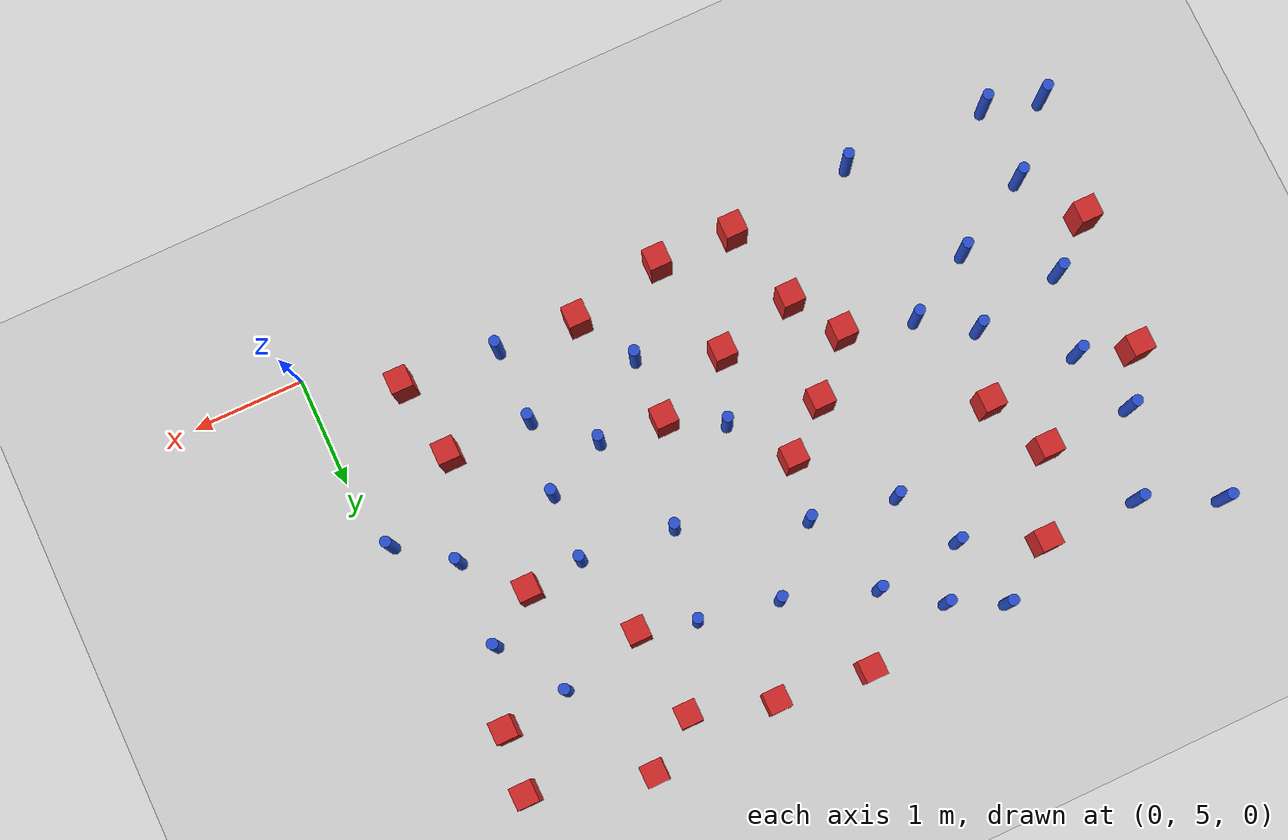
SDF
<sdf version="1.6">
 <world name="default">
  <model name="ground_plane">
   <static>1</static>
   <link name="link">
    <collision name="collision">
     <geometry><plane><normal>0 0 1</normal><size>100 100</size></plane></geometry>
     <surface><friction><ode><mu>100</mu><mu2>50</mu2></ode></friction></surface>
    </collision>
    <visual name="visual">
     <cast_shadows>0</cast_shadows>
     <geometry><plane><normal>0 0 1</normal><size>100 100</size></plane></geometry>
     <material>
      <ambient>1.0 1.0 1.0 1.0</ambient>
      <diffuse>0.8 0.8 0.8 1.0</diffuse>
      <specular>0.01 0.01 0.01 1.000000</specular>
     </material>
    </visual>
   </link>
  </model>
  <model name="square_post_obstacle3">
   <static>true</static>
   <pose>-0.918401008194 6.17674833115 1.91545236811e-07 -7.35059704564e-06 1.12565212e-07 2.39332434364e-05</pose>
   <link name="link">
    <pose>0 0 0.25 0 -0 0</pose>
    <inertial>
     <mass>100</mass>
     <inertia>
      <ixx>0.166667</ixx>
      <ixy>0</ixy>
      <ixz>0</ixz>
      <iyy>0.166667</iyy>
      <iyz>0</iyz>
      <izz>0.166667</izz>
     </inertia>
    </inertial>
    <collision name="collision"><geometry><box><size>.2 .2 .5</size></box></geometry></collision>
    <visual name="visual">
     <geometry><box><size>.2 .2 .5</size></box></geometry>
     <material>
      <script><name>Gazebo/Red</name><uri>file://media/materials/scripts/gazebo.material</uri></script>
     </material>
    </visual>
   </link>
  </model>
  <model name="square_post_obstacle4">
   <static>true</static>
   <pose>-5.23449255647 9.01291391849 1.91545236811e-07 -7.35059704564e-06 1.12565212e-07 2.39332434364e-05</pose>
   <link name="link">
    <pose>0 0 0.25 0 -0 0</pose>
    <inertial>
     <mass>100</mass>
     <inertia>
      <ixx>0.166667</ixx>
      <ixy>0</ixy>
      <ixz>0</ixz>
      <iyy>0.166667</iyy>
      <iyz>0</iyz>
      <izz>0.166667</izz>
     </inertia>
    </inertial>
    <collision name="collision"><geometry><box><size>.2 .2 .5</size></box></geometry></collision>
    <visual name="visual">
     <geometry><box><size>.2 .2 .5</size></box></geometry>
     <material>
      <script><name>Gazebo/Red</name><uri>file://media/materials/scripts/gazebo.material</uri></script>
     </material>
    </visual>
   </link>
  </model>
  <model name="pole_obstacle4">
   <static>true</static>
   <pose>-0.623896002527 7.06503482538 7.38925637345e-09 -8.471706928e-08 1.24976765086e-08 -1.74513093015e-07</pose>
   <link name="link">
    <pose>0 0 0.3 0 -0 0</pose>
    <inertial>
     <mass>1</mass>
     <inertia><ixx>0.145833</ixx><ixy>0</ixy><ixz>0</ixz><iyy>0.145833</iyy><iyz>0</iyz><izz>0.125</izz></inertia>
    </inertial>
    <collision name="collision">
     <geometry><cylinder><radius>0.05</radius><length>.6</length></cylinder></geometry>
    </collision>
    <visual name="visual">
     <geometry><cylinder><radius>0.05</radius><length>.6</length></cylinder></geometry>
     <material>
      <script><name>Gazebo/Blue</name><uri>file://media/materials/scripts/gazebo.material</uri></script>
     </material>
    </visual>
   </link>
  </model>
  <model name="square_post_obstacle16">
   <static>true</static>
   <pose>-6.69590890887 7.84037955115 1.91545236811e-07 -7.35059704564e-06 1.12565212e-07 2.39332434364e-05</pose>
   <link name="link">
    <pose>0 0 0.25 0 -0 0</pose>
    <inertial>
     <mass>100</mass>
     <inertia>
      <ixx>0.166667</ixx>
      <ixy>0</ixy>
      <ixz>0</ixz>
      <iyy>0.166667</iyy>
      <iyz>0</iyz>
      <izz>0.166667</izz>
     </inertia>
    </inertial>
    <collision name="collision"><geometry><box><size>.2 .2 .5</size></box></geometry></collision>
    <visual name="visual">
     <geometry><box><size>.2 .2 .5</size></box></geometry>
     <material>
      <script><name>Gazebo/Red</name><uri>file://media/materials/scripts/gazebo.material</uri></script>
     </material>
    </visual>
   </link>
  </model>
  <model name="pole_obstacle9">
   <static>true</static>
   <pose>-5.08694028577 6.80690436211 7.38925637345e-09 -8.47170692796e-08 1.24976764786e-08 -1.74513093032e-07</pose>
   <link name="link">
    <pose>0 0 0.3 0 -0 0</pose>
    <inertial>
     <mass>1</mass>
     <inertia><ixx>0.145833</ixx><ixy>0</ixy><ixz>0</ixz><iyy>0.145833</iyy><iyz>0</iyz><izz>0.125</izz></inertia>
    </inertial>
    <collision name="collision">
     <geometry><cylinder><radius>0.05</radius><length>.6</length></cylinder></geometry>
    </collision>
    <visual name="visual">
     <geometry><cylinder><radius>0.05</radius><length>.6</length></cylinder></geometry>
     <material>
      <script><name>Gazebo/Blue</name><uri>file://media/materials/scripts/gazebo.material</uri></script>
     </material>
    </visual>
   </link>
  </model>
  <model name="square_post_obstacle22">
   <static>true</static>
   <pose>-1.38829633164 9.39031996727 1.91545236811e-07 -7.35059704564e-06 1.12565212e-07 2.39332434364e-05</pose>
   <link name="link">
    <pose>0 0 0.25 0 -0 0</pose>
    <inertial>
     <mass>100</mass>
     <inertia>
      <ixx>0.166667</ixx>
      <ixy>0</ixy>
      <ixz>0</ixz>
      <iyy>0.166667</iyy>
      <iyz>0</iyz>
      <izz>0.166667</izz>
     </inertia>
    </inertial>
    <collision name="collision"><geometry><box><size>.2 .2 .5</size></box></geometry></collision>
    <visual name="visual">
     <geometry><box><size>.2 .2 .5</size></box></geometry>
     <material>
      <script><name>Gazebo/Red</name><uri>file://media/materials/scripts/gazebo.material</uri></script>
     </material>
    </visual>
   </link>
  </model>
  <model name="pole_obstacle15">
   <static>true</static>
   <pose>-2.41591872018 7.57751806463 7.38925637345e-09 -8.47170692798e-08 1.24976765033e-08 -1.74513093019e-07</pose>
   <link name="link">
    <pose>0 0 0.3 0 -0 0</pose>
    <inertial>
     <mass>1</mass>
     <inertia><ixx>0.145833</ixx><ixy>0</ixy><ixz>0</ixz><iyy>0.145833</iyy><iyz>0</iyz><izz>0.125</izz></inertia>
    </inertial>
    <collision name="collision">
     <geometry><cylinder><radius>0.05</radius><length>.6</length></cylinder></geometry>
    </collision>
    <visual name="visual">
     <geometry><cylinder><radius>0.05</radius><length>.6</length></cylinder></geometry>
     <material>
      <script><name>Gazebo/Blue</name><uri>file://media/materials/scripts/gazebo.material</uri></script>
     </material>
    </visual>
   </link>
  </model>
  <model name="square_post_obstacle33">
   <static>true</static>
   <pose>-4.01774112409 7.10215263318 1.91545236811e-07 -7.35059704564e-06 1.12565212e-07 2.39332434364e-05</pose>
   <link name="link">
    <pose>0 0 0.25 0 -0 0</pose>
    <inertial>
     <mass>100</mass>
     <inertia>
      <ixx>0.166667</ixx>
      <ixy>0</ixy>
      <ixz>0</ixz>
      <iyy>0.166667</iyy>
      <iyz>0</iyz>
      <izz>0.166667</izz>
     </inertia>
    </inertial>
    <collision name="collision"><geometry><box><size>.2 .2 .5</size></box></geometry></collision>
    <visual name="visual">
     <geometry><box><size>.2 .2 .5</size></box></geometry>
     <material>
      <script><name>Gazebo/Red</name><uri>file://media/materials/scripts/gazebo.material</uri></script>
     </material>
    </visual>
   </link>
  </model>
  <model name="square_post_obstacle34">
   <static>true</static>
   <pose>-3.43470226024 6.36694074764 1.91545236811e-07 -7.35059704564e-06 1.12565212e-07 2.39332434364e-05</pose>
   <link name="link">
    <pose>0 0 0.25 0 -0 0</pose>
    <inertial>
     <mass>100</mass>
     <inertia>
      <ixx>0.166667</ixx>
      <ixy>0</ixy>
      <ixz>0</ixz>
      <iyy>0.166667</iyy>
      <iyz>0</iyz>
      <izz>0.166667</izz>
     </inertia>
    </inertial>
    <collision name="collision"><geometry><box><size>.2 .2 .5</size></box></geometry></collision>
    <visual name="visual">
     <geometry><box><size>.2 .2 .5</size></box></geometry>
     <material>
      <script><name>Gazebo/Red</name><uri>file://media/materials/scripts/gazebo.material</uri></script>
     </material>
    </visual>
   </link>
  </model>
  <model name="pole_obstacle30">
   <static>true</static>
   <pose>-0.614369016193 7.85293304512 7.38925637345e-09 -8.471706928e-08 1.24976765086e-08 -1.74513093015e-07</pose>
   <link name="link">
    <pose>0 0 0.3 0 -0 0</pose>
    <inertial>
     <mass>1</mass>
     <inertia><ixx>0.145833</ixx><ixy>0</ixy><ixz>0</ixz><iyy>0.145833</iyy><iyz>0</iyz><izz>0.125</izz></inertia>
    </inertial>
    <collision name="collision">
     <geometry><cylinder><radius>0.05</radius><length>.6</length></cylinder></geometry>
    </collision>
    <visual name="visual">
     <geometry><cylinder><radius>0.05</radius><length>.6</length></cylinder></geometry>
     <material>
      <script><name>Gazebo/Blue</name><uri>file://media/materials/scripts/gazebo.material</uri></script>
     </material>
    </visual>
   </link>
  </model>
  <model name="pole_obstacle32">
   <static>true</static>
   <pose>-6.38369213323 6.96291825536 7.38925637345e-09 -8.47170692796e-08 1.24976764786e-08 -1.74513093032e-07</pose>
   <link name="link">
    <pose>0 0 0.3 0 -0 0</pose>
    <inertial>
     <mass>1</mass>
     <inertia><ixx>0.145833</ixx><ixy>0</ixy><ixz>0</ixz><iyy>0.145833</iyy><iyz>0</iyz><izz>0.125</izz></inertia>
    </inertial>
    <collision name="collision">
     <geometry><cylinder><radius>0.05</radius><length>.6</length></cylinder></geometry>
    </collision>
    <visual name="visual">
     <geometry><cylinder><radius>0.05</radius><length>.6</length></cylinder></geometry>
     <material>
      <script><name>Gazebo/Blue</name><uri>file://media/materials/scripts/gazebo.material</uri></script>
     </material>
    </visual>
   </link>
  </model>
  <model name="pole_obstacle35">
   <static>true</static>
   <pose>-1.5731115859 7.48554747959 7.38925637345e-09 -8.47170692799e-08 1.24976765033e-08 -1.74513093018e-07</pose>
   <link name="link">
    <pose>0 0 0.3 0 -0 0</pose>
    <inertial>
     <mass>1</mass>
     <inertia><ixx>0.145833</ixx><ixy>0</ixy><ixz>0</ixz><iyy>0.145833</iyy><iyz>0</iyz><izz>0.125</izz></inertia>
    </inertial>
    <collision name="collision">
     <geometry><cylinder><radius>0.05</radius><length>.6</length></cylinder></geometry>
    </collision>
    <visual name="visual">
     <geometry><cylinder><radius>0.05</radius><length>.6</length></cylinder></geometry>
     <material>
      <script><name>Gazebo/Blue</name><uri>file://media/materials/scripts/gazebo.material</uri></script>
     </material>
    </visual>
   </link>
  </model>
  <model name="square_post_obstacle37">
   <static>true</static>
   <pose>-5.60214243194 8.30053714972 1.91545236811e-07 -7.35059704564e-06 1.12565212e-07 2.39332434364e-05</pose>
   <link name="link">
    <pose>0 0 0.25 0 -0 0</pose>
    <inertial>
     <mass>100</mass>
     <inertia>
      <ixx>0.166667</ixx>
      <ixy>0</ixy>
      <ixz>0</ixz>
      <iyy>0.166667</iyy>
      <iyz>0</iyz>
      <izz>0.166667</izz>
     </inertia>
    </inertial>
    <collision name="collision"><geometry><box><size>.2 .2 .5</size></box></geometry></collision>
    <visual name="visual">
     <geometry><box><size>.2 .2 .5</size></box></geometry>
     <material>
      <script><name>Gazebo/Red</name><uri>file://media/materials/scripts/gazebo.material</uri></script>
     </material>
    </visual>
   </link>
  </model>
  <model name="pole_obstacle43">
   <static>true</static>
   <pose>-1.6851196477 5.51558066621 7.38925637345e-09 -8.47170692799e-08 1.24976765033e-08 -1.74513093018e-07</pose>
   <link name="link">
    <pose>0 0 0.3 0 -0 0</pose>
    <inertial>
     <mass>1</mass>
     <inertia><ixx>0.145833</ixx><ixy>0</ixy><ixz>0</ixz><iyy>0.145833</iyy><iyz>0</iyz><izz>0.125</izz></inertia>
    </inertial>
    <collision name="collision">
     <geometry><cylinder><radius>0.05</radius><length>.6</length></cylinder></geometry>
    </collision>
    <visual name="visual">
     <geometry><cylinder><radius>0.05</radius><length>.6</length></cylinder></geometry>
     <material>
      <script><name>Gazebo/Blue</name><uri>file://media/materials/scripts/gazebo.material</uri></script>
     </material>
    </visual>
   </link>
  </model>
  <model name="pole_obstacle45">
   <static>true</static>
   <pose>-0.153609339791 6.69365491989 7.38925637345e-09 -8.47170692799e-08 1.24976765043e-08 -1.74513093019e-07</pose>
   <link name="link">
    <pose>0 0 0.3 0 -0 0</pose>
    <inertial>
     <mass>1</mass>
     <inertia><ixx>0.145833</ixx><ixy>0</ixy><ixz>0</ixz><iyy>0.145833</iyy><iyz>0</iyz><izz>0.125</izz></inertia>
    </inertial>
    <collision name="collision">
     <geometry><cylinder><radius>0.05</radius><length>.6</length></cylinder></geometry>
    </collision>
    <visual name="visual">
     <geometry><cylinder><radius>0.05</radius><length>.6</length></cylinder></geometry>
     <material>
      <script><name>Gazebo/Blue</name><uri>file://media/materials/scripts/gazebo.material</uri></script>
     </material>
    </visual>
   </link>
  </model>
  <model name="pole_obstacle50">
   <static>true</static>
   <pose>-4.55668917506 8.71123426103 7.38925637345e-09 -8.471706928e-08 1.24976765081e-08 -1.74513093015e-07</pose>
   <link name="link">
    <pose>0 0 0.3 0 -0 0</pose>
    <inertial>
     <mass>1</mass>
     <inertia><ixx>0.145833</ixx><ixy>0</ixy><ixz>0</ixz><iyy>0.145833</iyy><iyz>0</iyz><izz>0.125</izz></inertia>
    </inertial>
    <collision name="collision">
     <geometry><cylinder><radius>0.05</radius><length>.6</length></cylinder></geometry>
    </collision>
    <visual name="visual">
     <geometry><cylinder><radius>0.05</radius><length>.6</length></cylinder></geometry>
     <material>
      <script><name>Gazebo/Blue</name><uri>file://media/materials/scripts/gazebo.material</uri></script>
     </material>
    </visual>
   </link>
  </model>
  <model name="square_post_obstacle58">
   <static>true</static>
   <pose>-2.72984956424 6.68530887392 1.91545236811e-07 -7.35059704564e-06 1.12565212e-07 2.39332434364e-05</pose>
   <link name="link">
    <pose>0 0 0.25 0 -0 0</pose>
    <inertial>
     <mass>100</mass>
     <inertia>
      <ixx>0.166667</ixx>
      <ixy>0</ixy>
      <ixz>0</ixz>
      <iyy>0.166667</iyy>
      <iyz>0</iyz>
      <izz>0.166667</izz>
     </inertia>
    </inertial>
    <collision name="collision"><geometry><box><size>.2 .2 .5</size></box></geometry></collision>
    <visual name="visual">
     <geometry><box><size>.2 .2 .5</size></box></geometry>
     <material>
      <script><name>Gazebo/Red</name><uri>file://media/materials/scripts/gazebo.material</uri></script>
     </material>
    </visual>
   </link>
  </model>
  <model name="square_post_obstacle59">
   <static>true</static>
   <pose>-4.45010056544 6.64157795449 1.91545236811e-07 -7.35059704564e-06 1.12565212e-07 2.39332434364e-05</pose>
   <link name="link">
    <pose>0 0 0.25 0 -0 0</pose>
    <inertial>
     <mass>100</mass>
     <inertia>
      <ixx>0.166667</ixx>
      <ixy>0</ixy>
      <ixz>0</ixz>
      <iyy>0.166667</iyy>
      <iyz>0</iyz>
      <izz>0.166667</izz>
     </inertia>
    </inertial>
    <collision name="collision"><geometry><box><size>.2 .2 .5</size></box></geometry></collision>
    <visual name="visual">
     <geometry><box><size>.2 .2 .5</size></box></geometry>
     <material>
      <script><name>Gazebo/Red</name><uri>file://media/materials/scripts/gazebo.material</uri></script>
     </material>
    </visual>
   </link>
  </model>
  <model name="pole_obstacle56">
   <static>true</static>
   <pose>-2.97497607164 8.5173098317 7.38925637345e-09 -8.47170692793e-08 1.24976764408e-08 -1.74513093041e-07</pose>
   <link name="link">
    <pose>0 0 0.3 0 -0 0</pose>
    <inertial>
     <mass>1</mass>
     <inertia><ixx>0.145833</ixx><ixy>0</ixy><ixz>0</ixz><iyy>0.145833</iyy><iyz>0</iyz><izz>0.125</izz></inertia>
    </inertial>
    <collision name="collision">
     <geometry><cylinder><radius>0.05</radius><length>.6</length></cylinder></geometry>
    </collision>
    <visual name="visual">
     <geometry><cylinder><radius>0.05</radius><length>.6</length></cylinder></geometry>
     <material>
      <script><name>Gazebo/Blue</name><uri>file://media/materials/scripts/gazebo.material</uri></script>
     </material>
    </visual>
   </link>
  </model>
  <model name="square_post_obstacle63">
   <static>true</static>
   <pose>-3.59511547546 7.46047542918 1.91545236811e-07 -7.35059704564e-06 1.12565212e-07 2.39332434364e-05</pose>
   <link name="link">
    <pose>0 0 0.25 0 -0 0</pose>
    <inertial>
     <mass>100</mass>
     <inertia>
      <ixx>0.166667</ixx>
      <ixy>0</ixy>
      <ixz>0</ixz>
      <iyy>0.166667</iyy>
      <iyz>0</iyz>
      <izz>0.166667</izz>
     </inertia>
    </inertial>
    <collision name="collision"><geometry><box><size>.2 .2 .5</size></box></geometry></collision>
    <visual name="visual">
     <geometry><box><size>.2 .2 .5</size></box></geometry>
     <material>
      <script><name>Gazebo/Red</name><uri>file://media/materials/scripts/gazebo.material</uri></script>
     </material>
    </visual>
   </link>
  </model>
  <model name="pole_obstacle61">
   <static>true</static>
   <pose>-5.13692649196 5.30350880595 7.38925637345e-09 -8.47170692796e-08 1.24976764786e-08 -1.74513093032e-07</pose>
   <link name="link">
    <pose>0 0 0.3 0 -0 0</pose>
    <inertial>
     <mass>1</mass>
     <inertia><ixx>0.145833</ixx><ixy>0</ixy><ixz>0</ixz><iyy>0.145833</iyy><iyz>0</iyz><izz>0.125</izz></inertia>
    </inertial>
    <collision name="collision">
     <geometry><cylinder><radius>0.05</radius><length>.6</length></cylinder></geometry>
    </collision>
    <visual name="visual">
     <geometry><cylinder><radius>0.05</radius><length>.6</length></cylinder></geometry>
     <material>
      <script><name>Gazebo/Blue</name><uri>file://media/materials/scripts/gazebo.material</uri></script>
     </material>
    </visual>
   </link>
  </model>
  <model name="pole_obstacle63">
   <static>true</static>
   <pose>-1.00224741705 8.44669307577 7.38925637345e-09 -8.47170692798e-08 1.2497676492e-08 -1.74513093025e-07</pose>
   <link name="link">
    <pose>0 0 0.3 0 -0 0</pose>
    <inertial>
     <mass>1</mass>
     <inertia><ixx>0.145833</ixx><ixy>0</ixy><ixz>0</ixz><iyy>0.145833</iyy><iyz>0</iyz><izz>0.125</izz></inertia>
    </inertial>
    <collision name="collision">
     <geometry><cylinder><radius>0.05</radius><length>.6</length></cylinder></geometry>
    </collision>
    <visual name="visual">
     <geometry><cylinder><radius>0.05</radius><length>.6</length></cylinder></geometry>
     <material>
      <script><name>Gazebo/Blue</name><uri>file://media/materials/scripts/gazebo.material</uri></script>
     </material>
    </visual>
   </link>
  </model>
  <model name="square_post_obstacle66">
   <static>true</static>
   <pose>-5.32951524692 7.73832660719 1.91545236811e-07 -7.35059704564e-06 1.12565212e-07 2.39332434364e-05</pose>
   <link name="link">
    <pose>0 0 0.25 0 -0 0</pose>
    <inertial>
     <mass>100</mass>
     <inertia>
      <ixx>0.166667</ixx>
      <ixy>0</ixy>
      <ixz>0</ixz>
      <iyy>0.166667</iyy>
      <iyz>0</iyz>
      <izz>0.166667</izz>
     </inertia>
    </inertial>
    <collision name="collision"><geometry><box><size>.2 .2 .5</size></box></geometry></collision>
    <visual name="visual">
     <geometry><box><size>.2 .2 .5</size></box></geometry>
     <material>
      <script><name>Gazebo/Red</name><uri>file://media/materials/scripts/gazebo.material</uri></script>
     </material>
    </visual>
   </link>
  </model>
  <model name="square_post_obstacle67">
   <static>true</static>
   <pose>-2.414627449 5.56766387382 1.91545236811e-07 -7.35059704564e-06 1.12565212e-07 2.39332434364e-05</pose>
   <link name="link">
    <pose>0 0 0.25 0 -0 0</pose>
    <inertial>
     <mass>100</mass>
     <inertia>
      <ixx>0.166667</ixx>
      <ixy>0</ixy>
      <ixz>0</ixz>
      <iyy>0.166667</iyy>
      <iyz>0</iyz>
      <izz>0.166667</izz>
     </inertia>
    </inertial>
    <collision name="collision"><geometry><box><size>.2 .2 .5</size></box></geometry></collision>
    <visual name="visual">
     <geometry><box><size>.2 .2 .5</size></box></geometry>
     <material>
      <script><name>Gazebo/Red</name><uri>file://media/materials/scripts/gazebo.material</uri></script>
     </material>
    </visual>
   </link>
  </model>
  <model name="pole_obstacle65">
   <static>true</static>
   <pose>-6.45932071452 5.3413321318 7.38925637345e-09 -8.47170692796e-08 1.24976764786e-08 -1.74513093032e-07</pose>
   <link name="link">
    <pose>0 0 0.3 0 -0 0</pose>
    <inertial>
     <mass>1</mass>
     <inertia><ixx>0.145833</ixx><ixy>0</ixy><ixz>0</ixz><iyy>0.145833</iyy><iyz>0</iyz><izz>0.125</izz></inertia>
    </inertial>
    <collision name="collision">
     <geometry><cylinder><radius>0.05</radius><length>.6</length></cylinder></geometry>
    </collision>
    <visual name="visual">
     <geometry><cylinder><radius>0.05</radius><length>.6</length></cylinder></geometry>
     <material>
      <script><name>Gazebo/Blue</name><uri>file://media/materials/scripts/gazebo.material</uri></script>
     </material>
    </visual>
   </link>
  </model>
  <model name="square_post_obstacle76">
   <static>true</static>
   <pose>-2.57226018982 9.27613784742 1.91545236811e-07 -7.35059704564e-06 1.12565212e-07 2.39332434364e-05</pose>
   <link name="link">
    <pose>0 0 0.25 0 -0 0</pose>
    <inertial>
     <mass>100</mass>
     <inertia>
      <ixx>0.166667</ixx>
      <ixy>0</ixy>
      <ixz>0</ixz>
      <iyy>0.166667</iyy>
      <iyz>0</iyz>
      <izz>0.166667</izz>
     </inertia>
    </inertial>
    <collision name="collision"><geometry><box><size>.2 .2 .5</size></box></geometry></collision>
    <visual name="visual">
     <geometry><box><size>.2 .2 .5</size></box></geometry>
     <material>
      <script><name>Gazebo/Red</name><uri>file://media/materials/scripts/gazebo.material</uri></script>
     </material>
    </visual>
   </link>
  </model>
  <model name="pole_obstacle77">
   <static>true</static>
   <pose>-6.44648812785 6.05945657615 7.38925637345e-09 -8.47170692796e-08 1.24976764786e-08 -1.74513093032e-07</pose>
   <link name="link">
    <pose>0 0 0.3 0 -0 0</pose>
    <inertial>
     <mass>1</mass>
     <inertia><ixx>0.145833</ixx><ixy>0</ixy><ixz>0</ixz><iyy>0.145833</iyy><iyz>0</iyz><izz>0.125</izz></inertia>
    </inertial>
    <collision name="collision">
     <geometry><cylinder><radius>0.05</radius><length>.6</length></cylinder></geometry>
    </collision>
    <visual name="visual">
     <geometry><cylinder><radius>0.05</radius><length>.6</length></cylinder></geometry>
     <material>
      <script><name>Gazebo/Blue</name><uri>file://media/materials/scripts/gazebo.material</uri></script>
     </material>
    </visual>
   </link>
  </model>
  <model name="pole_obstacle81">
   <static>true</static>
   <pose>-1.59021064232 6.87446836828 7.38925637345e-09 -8.47170692799e-08 1.24976765033e-08 -1.74513093018e-07</pose>
   <link name="link">
    <pose>0 0 0.3 0 -0 0</pose>
    <inertial>
     <mass>1</mass>
     <inertia><ixx>0.145833</ixx><ixy>0</ixy><ixz>0</ixz><iyy>0.145833</iyy><iyz>0</iyz><izz>0.125</izz></inertia>
    </inertial>
    <collision name="collision">
     <geometry><cylinder><radius>0.05</radius><length>.6</length></cylinder></geometry>
    </collision>
    <visual name="visual">
     <geometry><cylinder><radius>0.05</radius><length>.6</length></cylinder></geometry>
     <material>
      <script><name>Gazebo/Blue</name><uri>file://media/materials/scripts/gazebo.material</uri></script>
     </material>
    </visual>
   </link>
  </model>
  <model name="pole_obstacle88">
   <static>true</static>
   <pose>-3.20835216498 6.94812294231 7.38925637345e-09 -8.47170692794e-08 1.24976764468e-08 -1.7451309304e-07</pose>
   <link name="link">
    <pose>0 0 0.3 0 -0 0</pose>
    <inertial>
     <mass>1</mass>
     <inertia><ixx>0.145833</ixx><ixy>0</ixy><ixz>0</ixz><iyy>0.145833</iyy><iyz>0</iyz><izz>0.125</izz></inertia>
    </inertial>
    <collision name="collision">
     <geometry><cylinder><radius>0.05</radius><length>.6</length></cylinder></geometry>
    </collision>
    <visual name="visual">
     <geometry><cylinder><radius>0.05</radius><length>.6</length></cylinder></geometry>
     <material>
      <script><name>Gazebo/Blue</name><uri>file://media/materials/scripts/gazebo.material</uri></script>
     </material>
    </visual>
   </link>
  </model>
  <model name="square_post_obstacle82">
   <static>true</static>
   <pose>-3.25753363041 5.40329968359 1.91545236811e-07 -7.35059704564e-06 1.12565212e-07 2.39332434364e-05</pose>
   <link name="link">
    <pose>0 0 0.25 0 -0 0</pose>
    <inertial>
     <mass>100</mass>
     <inertia>
      <ixx>0.166667</ixx>
      <ixy>0</ixy>
      <ixz>0</ixz>
      <iyy>0.166667</iyy>
      <iyz>0</iyz>
      <izz>0.166667</izz>
     </inertia>
    </inertial>
    <collision name="collision"><geometry><box><size>.2 .2 .5</size></box></geometry></collision>
    <visual name="visual">
     <geometry><box><size>.2 .2 .5</size></box></geometry>
     <material>
      <script><name>Gazebo/Red</name><uri>file://media/materials/scripts/gazebo.material</uri></script>
     </material>
    </visual>
   </link>
  </model>
  <model name="pole_obstacle94">
   <static>true</static>
   <pose>-3.49290067821 8.00663425013 7.38925637345e-09 -8.47170692801e-08 1.24976765178e-08 -1.74513093011e-07</pose>
   <link name="link">
    <pose>0 0 0.3 0 -0 0</pose>
    <inertial>
     <mass>1</mass>
     <inertia><ixx>0.145833</ixx><ixy>0</ixy><ixz>0</ixz><iyy>0.145833</iyy><iyz>0</iyz><izz>0.125</izz></inertia>
    </inertial>
    <collision name="collision">
     <geometry><cylinder><radius>0.05</radius><length>.6</length></cylinder></geometry>
    </collision>
    <visual name="visual">
     <geometry><cylinder><radius>0.05</radius><length>.6</length></cylinder></geometry>
     <material>
      <script><name>Gazebo/Blue</name><uri>file://media/materials/scripts/gazebo.material</uri></script>
     </material>
    </visual>
   </link>
  </model>
  <model name="square_post_obstacle85">
   <static>true</static>
   <pose>-0.33237803733 9.09518789099 1.91545236811e-07 -7.35059704564e-06 1.12565212e-07 2.39332434364e-05</pose>
   <link name="link">
    <pose>0 0 0.25 0 -0 0</pose>
    <inertial>
     <mass>100</mass>
     <inertia>
      <ixx>0.166667</ixx>
      <ixy>0</ixy>
      <ixz>0</ixz>
      <iyy>0.166667</iyy>
      <iyz>0</iyz>
      <izz>0.166667</izz>
     </inertia>
    </inertial>
    <collision name="collision"><geometry><box><size>.2 .2 .5</size></box></geometry></collision>
    <visual name="visual">
     <geometry><box><size>.2 .2 .5</size></box></geometry>
     <material>
      <script><name>Gazebo/Red</name><uri>file://media/materials/scripts/gazebo.material</uri></script>
     </material>
    </visual>
   </link>
  </model>
  <model name="square_post_obstacle88">
   <static>true</static>
   <pose>-3.41153118251 9.37278961481 1.91545236811e-07 -7.35059704564e-06 1.12565212e-07 2.39332434364e-05</pose>
   <link name="link">
    <pose>0 0 0.25 0 -0 0</pose>
    <inertial>
     <mass>100</mass>
     <inertia>
      <ixx>0.166667</ixx>
      <ixy>0</ixy>
      <ixz>0</ixz>
      <iyy>0.166667</iyy>
      <iyz>0</iyz>
      <izz>0.166667</izz>
     </inertia>
    </inertial>
    <collision name="collision"><geometry><box><size>.2 .2 .5</size></box></geometry></collision>
    <visual name="visual">
     <geometry><box><size>.2 .2 .5</size></box></geometry>
     <material>
      <script><name>Gazebo/Red</name><uri>file://media/materials/scripts/gazebo.material</uri></script>
     </material>
    </visual>
   </link>
  </model>
  <model name="square_post_obstacle95">
   <static>true</static>
   <pose>-1.84785937966 9.06594925467 1.91545236811e-07 -7.35059704564e-06 1.12565212e-07 2.39332434364e-05</pose>
   <link name="link">
    <pose>0 0 0.25 0 -0 0</pose>
    <inertial>
     <mass>100</mass>
     <inertia>
      <ixx>0.166667</ixx>
      <ixy>0</ixy>
      <ixz>0</ixz>
      <iyy>0.166667</iyy>
      <iyz>0</iyz>
      <izz>0.166667</izz>
     </inertia>
    </inertial>
    <collision name="collision"><geometry><box><size>.2 .2 .5</size></box></geometry></collision>
    <visual name="visual">
     <geometry><box><size>.2 .2 .5</size></box></geometry>
     <material>
      <script><name>Gazebo/Red</name><uri>file://media/materials/scripts/gazebo.material</uri></script>
     </material>
    </visual>
   </link>
  </model>
  <model name="pole_obstacle116">
   <static>true</static>
   <pose>-2.25829506796 8.3826711862 7.38925637345e-09 -8.47170692793e-08 1.24976764408e-08 -1.74513093041e-07</pose>
   <link name="link">
    <pose>0 0 0.3 0 -0 0</pose>
    <inertial>
     <mass>1</mass>
     <inertia><ixx>0.145833</ixx><ixy>0</ixy><ixz>0</ixz><iyy>0.145833</iyy><iyz>0</iyz><izz>0.125</izz></inertia>
    </inertial>
    <collision name="collision">
     <geometry><cylinder><radius>0.05</radius><length>.6</length></cylinder></geometry>
    </collision>
    <visual name="visual">
     <geometry><cylinder><radius>0.05</radius><length>.6</length></cylinder></geometry>
     <material>
      <script><name>Gazebo/Blue</name><uri>file://media/materials/scripts/gazebo.material</uri></script>
     </material>
    </visual>
   </link>
  </model>
  <model name="pole_obstacle119">
   <static>true</static>
   <pose>-6.41518786215 8.29047856282 7.38925637345e-09 -8.471706928e-08 1.24976765081e-08 -1.74513093015e-07</pose>
   <link name="link">
    <pose>0 0 0.3 0 -0 0</pose>
    <inertial>
     <mass>1</mass>
     <inertia><ixx>0.145833</ixx><ixy>0</ixy><ixz>0</ixz><iyy>0.145833</iyy><iyz>0</iyz><izz>0.125</izz></inertia>
    </inertial>
    <collision name="collision">
     <geometry><cylinder><radius>0.05</radius><length>.6</length></cylinder></geometry>
    </collision>
    <visual name="visual">
     <geometry><cylinder><radius>0.05</radius><length>.6</length></cylinder></geometry>
     <material>
      <script><name>Gazebo/Blue</name><uri>file://media/materials/scripts/gazebo.material</uri></script>
     </material>
    </visual>
   </link>
  </model>
  <model name="square_post_obstacle123">
   <static>true</static>
   <pose>-0.803249415375 5.44893314819 1.91545236811e-07 -7.35059704564e-06 1.12565212e-07 2.39332434364e-05</pose>
   <link name="link">
    <pose>0 0 0.25 0 -0 0</pose>
    <inertial>
     <mass>100</mass>
     <inertia>
      <ixx>0.166667</ixx>
      <ixy>0</ixy>
      <ixz>0</ixz>
      <iyy>0.166667</iyy>
      <iyz>0</iyz>
      <izz>0.166667</izz>
     </inertia>
    </inertial>
    <collision name="collision"><geometry><box><size>.2 .2 .5</size></box></geometry></collision>
    <visual name="visual">
     <geometry><box><size>.2 .2 .5</size></box></geometry>
     <material>
      <script><name>Gazebo/Red</name><uri>file://media/materials/scripts/gazebo.material</uri></script>
     </material>
    </visual>
   </link>
  </model>
  <model name="pole_obstacle141">
   <static>true</static>
   <pose>-3.77446241334 8.79563692886 7.38925637345e-09 -8.47170692799e-08 1.24976765012e-08 -1.74513093021e-07</pose>
   <link name="link">
    <pose>0 0 0.3 0 -0 0</pose>
    <inertial>
     <mass>1</mass>
     <inertia><ixx>0.145833</ixx><ixy>0</ixy><ixz>0</ixz><iyy>0.145833</iyy><iyz>0</iyz><izz>0.125</izz></inertia>
    </inertial>
    <collision name="collision">
     <geometry><cylinder><radius>0.05</radius><length>.6</length></cylinder></geometry>
    </collision>
    <visual name="visual">
     <geometry><cylinder><radius>0.05</radius><length>.6</length></cylinder></geometry>
     <material>
      <script><name>Gazebo/Blue</name><uri>file://media/materials/scripts/gazebo.material</uri></script>
     </material>
    </visual>
   </link>
  </model>
  <model name="pole_obstacle142">
   <static>true</static>
   <pose>-5.71900097005 6.4502102348 7.38925637345e-09 -8.47170692796e-08 1.24976764786e-08 -1.74513093032e-07</pose>
   <link name="link">
    <pose>0 0 0.3 0 -0 0</pose>
    <inertial>
     <mass>1</mass>
     <inertia><ixx>0.145833</ixx><ixy>0</ixy><ixz>0</ixz><iyy>0.145833</iyy><iyz>0</iyz><izz>0.125</izz></inertia>
    </inertial>
    <collision name="collision">
     <geometry><cylinder><radius>0.05</radius><length>.6</length></cylinder></geometry>
    </collision>
    <visual name="visual">
     <geometry><cylinder><radius>0.05</radius><length>.6</length></cylinder></geometry>
     <material>
      <script><name>Gazebo/Blue</name><uri>file://media/materials/scripts/gazebo.material</uri></script>
     </material>
    </visual>
   </link>
  </model>
  <model name="square_post_obstacle133">
   <static>true</static>
   <pose>-3.9715017343 5.42554898071 1.91545236811e-07 -7.35059704564e-06 1.12565212e-07 2.39332434364e-05</pose>
   <link name="link">
    <pose>0 0 0.25 0 -0 0</pose>
    <inertial>
     <mass>100</mass>
     <inertia>
      <ixx>0.166667</ixx>
      <ixy>0</ixy>
      <ixz>0</ixz>
      <iyy>0.166667</iyy>
      <iyz>0</iyz>
      <izz>0.166667</izz>
     </inertia>
    </inertial>
    <collision name="collision"><geometry><box><size>.2 .2 .5</size></box></geometry></collision>
    <visual name="visual">
     <geometry><box><size>.2 .2 .5</size></box></geometry>
     <material>
      <script><name>Gazebo/Red</name><uri>file://media/materials/scripts/gazebo.material</uri></script>
     </material>
    </visual>
   </link>
  </model>
  <model name="pole_obstacle144">
   <static>true</static>
   <pose>-4.25861903065 8.14226920106 7.38925637345e-09 -8.471706928e-08 1.24976765081e-08 -1.74513093015e-07</pose>
   <link name="link">
    <pose>0 0 0.3 0 -0 0</pose>
    <inertial>
     <mass>1</mass>
     <inertia><ixx>0.145833</ixx><ixy>0</ixy><ixz>0</ixz><iyy>0.145833</iyy><iyz>0</iyz><izz>0.125</izz></inertia>
    </inertial>
    <collision name="collision">
     <geometry><cylinder><radius>0.05</radius><length>.6</length></cylinder></geometry>
    </collision>
    <visual name="visual">
     <geometry><cylinder><radius>0.05</radius><length>.6</length></cylinder></geometry>
     <material>
      <script><name>Gazebo/Blue</name><uri>file://media/materials/scripts/gazebo.material</uri></script>
     </material>
    </visual>
   </link>
  </model>
  <model name="square_post_obstacle157">
   <static>true</static>
   <pose>-1.75009122166 8.24784237939 1.91545236811e-07 -7.35059704564e-06 1.12565212e-07 2.39332434364e-05</pose>
   <link name="link">
    <pose>0 0 0.25 0 -0 0</pose>
    <inertial>
     <mass>100</mass>
     <inertia>
      <ixx>0.166667</ixx>
      <ixy>0</ixy>
      <ixz>0</ixz>
      <iyy>0.166667</iyy>
      <iyz>0</iyz>
      <izz>0.166667</izz>
     </inertia>
    </inertial>
    <collision name="collision"><geometry><box><size>.2 .2 .5</size></box></geometry></collision>
    <visual name="visual">
     <geometry><box><size>.2 .2 .5</size></box></geometry>
     <material>
      <script><name>Gazebo/Red</name><uri>file://media/materials/scripts/gazebo.material</uri></script>
     </material>
    </visual>
   </link>
  </model>
  <model name="pole_obstacle172">
   <static>true</static>
   <pose>-4.24131365952 9.14431520885 7.38925637345e-09 -8.471706928e-08 1.24976765081e-08 -1.74513093015e-07</pose>
   <link name="link">
    <pose>0 0 0.3 0 -0 0</pose>
    <inertial>
     <mass>1</mass>
     <inertia><ixx>0.145833</ixx><ixy>0</ixy><ixz>0</ixz><iyy>0.145833</iyy><iyz>0</iyz><izz>0.125</izz></inertia>
    </inertial>
    <collision name="collision">
     <geometry><cylinder><radius>0.05</radius><length>.6</length></cylinder></geometry>
    </collision>
    <visual name="visual">
     <geometry><cylinder><radius>0.05</radius><length>.6</length></cylinder></geometry>
     <material>
      <script><name>Gazebo/Blue</name><uri>file://media/materials/scripts/gazebo.material</uri></script>
     </material>
    </visual>
   </link>
  </model>
  <model name="pole_obstacle181">
   <static>true</static>
   <pose>-2.14394885097 6.62368856822 7.38925637345e-09 -8.47170692798e-08 1.24976765033e-08 -1.74513093019e-07</pose>
   <link name="link">
    <pose>0 0 0.3 0 -0 0</pose>
    <inertial>
     <mass>1</mass>
     <inertia><ixx>0.145833</ixx><ixy>0</ixy><ixz>0</ixz><iyy>0.145833</iyy><iyz>0</iyz><izz>0.125</izz></inertia>
    </inertial>
    <collision name="collision">
     <geometry><cylinder><radius>0.05</radius><length>.6</length></cylinder></geometry>
    </collision>
    <visual name="visual">
     <geometry><cylinder><radius>0.05</radius><length>.6</length></cylinder></geometry>
     <material>
      <script><name>Gazebo/Blue</name><uri>file://media/materials/scripts/gazebo.material</uri></script>
     </material>
    </visual>
   </link>
  </model>
  <model name="pole_obstacle182">
   <static>true</static>
   <pose>-5.53946303986 7.12011560005 7.38925637345e-09 -8.47170692796e-08 1.24976764786e-08 -1.74513093032e-07</pose>
   <link name="link">
    <pose>0 0 0.3 0 -0 0</pose>
    <inertial>
     <mass>1</mass>
     <inertia><ixx>0.145833</ixx><ixy>0</ixy><ixz>0</ixz><iyy>0.145833</iyy><iyz>0</iyz><izz>0.125</izz></inertia>
    </inertial>
    <collision name="collision">
     <geometry><cylinder><radius>0.05</radius><length>.6</length></cylinder></geometry>
    </collision>
    <visual name="visual">
     <geometry><cylinder><radius>0.05</radius><length>.6</length></cylinder></geometry>
     <material>
      <script><name>Gazebo/Blue</name><uri>file://media/materials/scripts/gazebo.material</uri></script>
     </material>
    </visual>
   </link>
  </model>
  <model name="square_post_obstacle180">
   <static>true</static>
   <pose>-1.05980271726 7.53223642638 1.91545236811e-07 -7.35059704564e-06 1.12565212e-07 2.39332434364e-05</pose>
   <link name="link">
    <pose>0 0 0.25 0 -0 0</pose>
    <inertial>
     <mass>100</mass>
     <inertia>
      <ixx>0.166667</ixx>
      <ixy>0</ixy>
      <ixz>0</ixz>
      <iyy>0.166667</iyy>
      <iyz>0</iyz>
      <izz>0.166667</izz>
     </inertia>
    </inertial>
    <collision name="collision"><geometry><box><size>.2 .2 .5</size></box></geometry></collision>
    <visual name="visual">
     <geometry><box><size>.2 .2 .5</size></box></geometry>
     <material>
      <script><name>Gazebo/Red</name><uri>file://media/materials/scripts/gazebo.material</uri></script>
     </material>
    </visual>
   </link>
  </model>
  <model name="square_post_obstacle185">
   <static>true</static>
   <pose>-6.81501138241 6.59948239888 1.91545236811e-07 -7.35059704564e-06 1.12565212e-07 2.39332434364e-05</pose>
   <link name="link">
    <pose>0 0 0.25 0 -0 0</pose>
    <inertial>
     <mass>100</mass>
     <inertia>
      <ixx>0.166667</ixx>
      <ixy>0</ixy>
      <ixz>0</ixz>
      <iyy>0.166667</iyy>
      <iyz>0</iyz>
      <izz>0.166667</izz>
     </inertia>
    </inertial>
    <collision name="collision"><geometry><box><size>.2 .2 .5</size></box></geometry></collision>
    <visual name="visual">
     <geometry><box><size>.2 .2 .5</size></box></geometry>
     <material>
      <script><name>Gazebo/Red</name><uri>file://media/materials/scripts/gazebo.material</uri></script>
     </material>
    </visual>
   </link>
  </model>
  <model name="square_post_obstacle191">
   <static>true</static>
   <pose>-4.16344429139 6.18648868697 1.91545236811e-07 -7.35059704564e-06 1.12565212e-07 2.39332434364e-05</pose>
   <link name="link">
    <pose>0 0 0.25 0 -0 0</pose>
    <inertial>
     <mass>100</mass>
     <inertia>
      <ixx>0.166667</ixx>
      <ixy>0</ixy>
      <ixz>0</ixz>
      <iyy>0.166667</iyy>
      <iyz>0</iyz>
      <izz>0.166667</izz>
     </inertia>
    </inertial>
    <collision name="collision"><geometry><box><size>.2 .2 .5</size></box></geometry></collision>
    <visual name="visual">
     <geometry><box><size>.2 .2 .5</size></box></geometry>
     <material>
      <script><name>Gazebo/Red</name><uri>file://media/materials/scripts/gazebo.material</uri></script>
     </material>
    </visual>
   </link>
  </model>
  <model name="square_post_obstacle202">
   <static>true</static>
   <pose>-0.395574046141 8.53035172095 1.91545236811e-07 -7.35059704564e-06 1.12565212e-07 2.39332434364e-05</pose>
   <link name="link">
    <pose>0 0 0.25 0 -0 0</pose>
    <inertial>
     <mass>100</mass>
     <inertia>
      <ixx>0.166667</ixx>
      <ixy>0</ixy>
      <ixz>0</ixz>
      <iyy>0.166667</iyy>
      <iyz>0</iyz>
      <izz>0.166667</izz>
     </inertia>
    </inertial>
    <collision name="collision"><geometry><box><size>.2 .2 .5</size></box></geometry></collision>
    <visual name="visual">
     <geometry><box><size>.2 .2 .5</size></box></geometry>
     <material>
      <script><name>Gazebo/Red</name><uri>file://media/materials/scripts/gazebo.material</uri></script>
     </material>
    </visual>
   </link>
  </model>
  <model name="pole_obstacle189">
   <static>true</static>
   <pose>-6.10867751975 9.03635536852 7.38925637345e-09 -8.471706928e-08 1.24976765081e-08 -1.74513093015e-07</pose>
   <link name="link">
    <pose>0 0 0.3 0 -0 0</pose>
    <inertial>
     <mass>1</mass>
     <inertia><ixx>0.145833</ixx><ixy>0</ixy><ixz>0</ixz><iyy>0.145833</iyy><iyz>0</iyz><izz>0.125</izz></inertia>
    </inertial>
    <collision name="collision">
     <geometry><cylinder><radius>0.05</radius><length>.6</length></cylinder></geometry>
    </collision>
    <visual name="visual">
     <geometry><cylinder><radius>0.05</radius><length>.6</length></cylinder></geometry>
     <material>
      <script><name>Gazebo/Blue</name><uri>file://media/materials/scripts/gazebo.material</uri></script>
     </material>
    </visual>
   </link>
  </model>
  <model name="pole_obstacle199">
   <static>true</static>
   <pose>-6.2107982829 7.67815266398 7.38925637345e-09 -8.47170692796e-08 1.24976764786e-08 -1.74513093032e-07</pose>
   <link name="link">
    <pose>0 0 0.3 0 -0 0</pose>
    <inertial>
     <mass>1</mass>
     <inertia><ixx>0.145833</ixx><ixy>0</ixy><ixz>0</ixz><iyy>0.145833</iyy><iyz>0</iyz><izz>0.125</izz></inertia>
    </inertial>
    <collision name="collision">
     <geometry><cylinder><radius>0.05</radius><length>.6</length></cylinder></geometry>
    </collision>
    <visual name="visual">
     <geometry><cylinder><radius>0.05</radius><length>.6</length></cylinder></geometry>
     <material>
      <script><name>Gazebo/Blue</name><uri>file://media/materials/scripts/gazebo.material</uri></script>
     </material>
    </visual>
   </link>
  </model>
  <model name="pole_obstacle200">
   <static>true</static>
   <pose>-2.72824241908 6.09239784695 7.38925637345e-09 -8.47170692798e-08 1.24976765033e-08 -1.74513093019e-07</pose>
   <link name="link">
    <pose>0 0 0.3 0 -0 0</pose>
    <inertial>
     <mass>1</mass>
     <inertia><ixx>0.145833</ixx><ixy>0</ixy><ixz>0</ixz><iyy>0.145833</iyy><iyz>0</iyz><izz>0.125</izz></inertia>
    </inertial>
    <collision name="collision">
     <geometry><cylinder><radius>0.05</radius><length>.6</length></cylinder></geometry>
    </collision>
    <visual name="visual">
     <geometry><cylinder><radius>0.05</radius><length>.6</length></cylinder></geometry>
     <material>
      <script><name>Gazebo/Blue</name><uri>file://media/materials/scripts/gazebo.material</uri></script>
     </material>
    </visual>
   </link>
  </model>
  <model name="pole_obstacle217">
   <static>true</static>
   <pose>-6.96514999043 5.48318002078 7.38925637345e-09 -8.47170692796e-08 1.24976764786e-08 -1.74513093032e-07</pose>
   <link name="link">
    <pose>0 0 0.3 0 -0 0</pose>
    <inertial>
     <mass>1</mass>
     <inertia><ixx>0.145833</ixx><ixy>0</ixy><ixz>0</ixz><iyy>0.145833</iyy><iyz>0</iyz><izz>0.125</izz></inertia>
    </inertial>
    <collision name="collision">
     <geometry><cylinder><radius>0.05</radius><length>.6</length></cylinder></geometry>
    </collision>
    <visual name="visual">
     <geometry><cylinder><radius>0.05</radius><length>.6</length></cylinder></geometry>
     <material>
      <script><name>Gazebo/Blue</name><uri>file://media/materials/scripts/gazebo.material</uri></script>
     </material>
    </visual>
   </link>
  </model>
  <model name="pole_obstacle219">
   <static>true</static>
   <pose>-4.71269999043 9.36434002078 7.38925637345e-09 -8.471706928e-08 1.24976765081e-08 -1.74513093015e-07</pose>
   <link name="link">
    <pose>0 0 0.3 0 -0 0</pose>
    <inertial>
     <mass>1</mass>
     <inertia><ixx>0.145833</ixx><ixy>0</ixy><ixz>0</ixz><iyy>0.145833</iyy><iyz>0</iyz><izz>0.125</izz></inertia>
    </inertial>
    <collision name="collision">
     <geometry><cylinder><radius>0.05</radius><length>.6</length></cylinder></geometry>
    </collision>
    <visual name="visual">
     <geometry><cylinder><radius>0.05</radius><length>.6</length></cylinder></geometry>
     <material>
      <script><name>Gazebo/Blue</name><uri>file://media/materials/scripts/gazebo.material</uri></script>
     </material>
    </visual>
   </link>
  </model>
  <model name="pole_obstacle220">
   <static>true</static>
   <pose>-1.67753999043 6.20386002078 7.38925637345e-09 -8.47170692799e-08 1.24976765033e-08 -1.74513093018e-07</pose>
   <link name="link">
    <pose>0 0 0.3 0 -0 0</pose>
    <inertial>
     <mass>1</mass>
     <inertia><ixx>0.145833</ixx><ixy>0</ixy><ixz>0</ixz><iyy>0.145833</iyy><iyz>0</iyz><izz>0.125</izz></inertia>
    </inertial>
    <collision name="collision">
     <geometry><cylinder><radius>0.05</radius><length>.6</length></cylinder></geometry>
    </collision>
    <visual name="visual">
     <geometry><cylinder><radius>0.05</radius><length>.6</length></cylinder></geometry>
     <material>
      <script><name>Gazebo/Blue</name><uri>file://media/materials/scripts/gazebo.material</uri></script>
     </material>
    </visual>
   </link>
  </model>
  <model name="pole_obstacle230">
   <static>true</static>
   <pose>-6.78420999043 9.34275002078 7.38925637345e-09 -8.471706928e-08 1.24976765081e-08 -1.74513093015e-07</pose>
   <link name="link">
    <pose>0 0 0.3 0 -0 0</pose>
    <inertial>
     <mass>1</mass>
     <inertia><ixx>0.145833</ixx><ixy>0</ixy><ixz>0</ixz><iyy>0.145833</iyy><iyz>0</iyz><izz>0.125</izz></inertia>
    </inertial>
    <collision name="collision">
     <geometry><cylinder><radius>0.05</radius><length>.6</length></cylinder></geometry>
    </collision>
    <visual name="visual">
     <geometry><cylinder><radius>0.05</radius><length>.6</length></cylinder></geometry>
     <material>
      <script><name>Gazebo/Blue</name><uri>file://media/materials/scripts/gazebo.material</uri></script>
     </material>
    </visual>
   </link>
  </model>
 </world>
</sdf>
